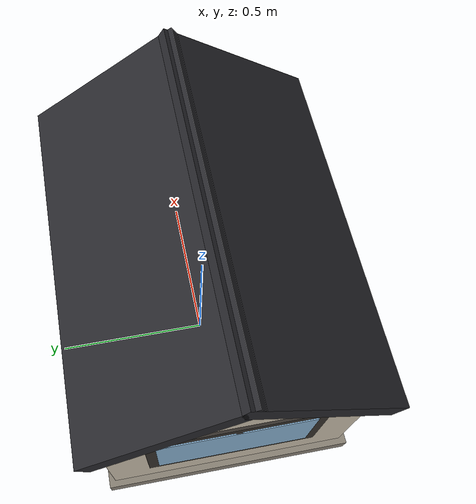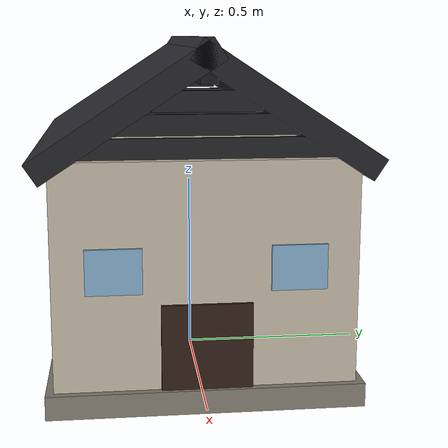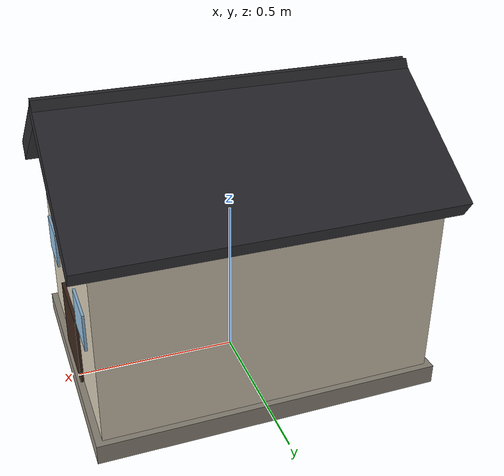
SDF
<sdf version="1.9">
  <model name="house">
    <static>true</static>
    <link name="house_link">
      <collision name="walls_collision">
        <pose>0 0 0.3125 0 0 0</pose>
        <geometry>
          <box>
            <size>1.0 0.75 0.625</size>
          </box>
        </geometry>
      </collision>

      <visual name="walls_visual">
        <pose>0 0 0.3125 0 0 0</pose>
        <geometry>
          <box>
            <size>1.0 0.75 0.625</size>
          </box>
        </geometry>
        <material>
          <ambient>0.82 0.78 0.70 1</ambient>
          <diffuse>0.82 0.78 0.70 1</diffuse>
          <specular>0.05 0.05 0.05 1</specular>
        </material>
      </visual>

      <visual name="roof_left_visual">
        <pose>0 0.19 0.745 -0.58 0 0</pose>
        <geometry>
          <box>
            <size>1.10 0.52 0.06</size>
          </box>
        </geometry>
        <material>
          <ambient>0.16 0.16 0.18 1</ambient>
          <diffuse>0.16 0.16 0.18 1</diffuse>
          <specular>0.05 0.05 0.05 1</specular>
        </material>
      </visual>

      <visual name="roof_right_visual">
        <pose>0 -0.19 0.745 0.58 0 0</pose>
        <geometry>
          <box>
            <size>1.10 0.52 0.06</size>
          </box>
        </geometry>
        <material>
          <ambient>0.16 0.16 0.18 1</ambient>
          <diffuse>0.16 0.16 0.18 1</diffuse>
          <specular>0.05 0.05 0.05 1</specular>
        </material>
      </visual>

      <visual name="roof_ridge_visual">
        <pose>0 0 0.825 0 0 0</pose>
        <geometry>
          <box>
            <size>1.08 0.04 0.04</size>
          </box>
        </geometry>
        <material>
          <ambient>0.12 0.12 0.14 1</ambient>
          <diffuse>0.12 0.12 0.14 1</diffuse>
          <specular>0.04 0.04 0.04 1</specular>
        </material>
      </visual>

      <visual name="front_gable_band_1_visual">
        <pose>0.5005 0 0.655 0 0 0</pose>
        <geometry>
          <box>
            <size>0.011 0.62 0.05</size>
          </box>
        </geometry>
        <material>
          <ambient>0.16 0.16 0.18 1</ambient>
          <diffuse>0.16 0.16 0.18 1</diffuse>
          <specular>0.05 0.05 0.05 1</specular>
        </material>
      </visual>

      <visual name="front_gable_band_2_visual">
        <pose>0.5005 0 0.710 0 0 0</pose>
        <geometry>
          <box>
            <size>0.011 0.44 0.05</size>
          </box>
        </geometry>
        <material>
          <ambient>0.16 0.16 0.18 1</ambient>
          <diffuse>0.16 0.16 0.18 1</diffuse>
          <specular>0.05 0.05 0.05 1</specular>
        </material>
      </visual>

      <visual name="front_gable_band_3_visual">
        <pose>0.5005 0 0.765 0 0 0</pose>
        <geometry>
          <box>
            <size>0.011 0.26 0.05</size>
          </box>
        </geometry>
        <material>
          <ambient>0.16 0.16 0.18 1</ambient>
          <diffuse>0.16 0.16 0.18 1</diffuse>
          <specular>0.05 0.05 0.05 1</specular>
        </material>
      </visual>

      <visual name="rear_gable_band_1_visual">
        <pose>-0.5005 0 0.655 0 0 0</pose>
        <geometry>
          <box>
            <size>0.011 0.62 0.05</size>
          </box>
        </geometry>
        <material>
          <ambient>0.16 0.16 0.18 1</ambient>
          <diffuse>0.16 0.16 0.18 1</diffuse>
          <specular>0.05 0.05 0.05 1</specular>
        </material>
      </visual>

      <visual name="rear_gable_band_2_visual">
        <pose>-0.5005 0 0.710 0 0 0</pose>
        <geometry>
          <box>
            <size>0.011 0.44 0.05</size>
          </box>
        </geometry>
        <material>
          <ambient>0.16 0.16 0.18 1</ambient>
          <diffuse>0.16 0.16 0.18 1</diffuse>
          <specular>0.05 0.05 0.05 1</specular>
        </material>
      </visual>

      <visual name="rear_gable_band_3_visual">
        <pose>-0.5005 0 0.765 0 0 0</pose>
        <geometry>
          <box>
            <size>0.011 0.26 0.05</size>
          </box>
        </geometry>
        <material>
          <ambient>0.16 0.16 0.18 1</ambient>
          <diffuse>0.16 0.16 0.18 1</diffuse>
          <specular>0.05 0.05 0.05 1</specular>
        </material>
      </visual>

      <visual name="door_visual">
        <pose>0.505 0 0.1375 0 0 0</pose>
        <geometry>
          <box>
            <size>0.01 0.225 0.275</size>
          </box>
        </geometry>
        <material>
          <ambient>0.22 0.14 0.10 1</ambient>
          <diffuse>0.22 0.14 0.10 1</diffuse>
          <specular>0.02 0.02 0.02 1</specular>
        </material>
      </visual>

      <visual name="window_left_visual">
        <pose>0.5075 -0.225 0.3625 0 0 0</pose>
        <geometry>
          <box>
            <size>0.0075 0.1375 0.1125</size>
          </box>
        </geometry>
        <material>
          <ambient>0.55 0.72 0.85 1</ambient>
          <diffuse>0.55 0.72 0.85 1</diffuse>
          <specular>0.1 0.1 0.1 1</specular>
        </material>
      </visual>

      <visual name="window_right_visual">
        <pose>0.5075 0.225 0.3625 0 0 0</pose>
        <geometry>
          <box>
            <size>0.0075 0.1375 0.1125</size>
          </box>
        </geometry>
        <material>
          <ambient>0.55 0.72 0.85 1</ambient>
          <diffuse>0.55 0.72 0.85 1</diffuse>
          <specular>0.1 0.1 0.1 1</specular>
        </material>
      </visual>

      <visual name="rear_big_window_frame_visual">
        <pose>-0.503 0 0.3725 0 0 0</pose>
        <geometry>
          <box>
            <size>0.01 0.51 0.31</size>
          </box>
        </geometry>
        <material>
          <ambient>0.22 0.2 0.18 1</ambient>
          <diffuse>0.22 0.2 0.18 1</diffuse>
          <specular>0.03 0.03 0.03 1</specular>
        </material>
      </visual>

      <visual name="rear_big_window_visual">
        <pose>-0.5075 0 0.3725 0 0 0</pose>
        <geometry>
          <box>
            <size>0.0075 0.45 0.25</size>
          </box>
        </geometry>
        <material>
          <ambient>0.55 0.72 0.85 1</ambient>
          <diffuse>0.55 0.72 0.85 1</diffuse>
          <specular>0.12 0.12 0.12 1</specular>
        </material>
      </visual>

      <visual name="rear_big_window_mullion_visual">
        <pose>-0.507 0 0.3725 0 0 0</pose>
        <geometry>
          <box>
            <size>0.008 0.025 0.25</size>
          </box>
        </geometry>
        <material>
          <ambient>0.22 0.2 0.18 1</ambient>
          <diffuse>0.22 0.2 0.18 1</diffuse>
          <specular>0.03 0.03 0.03 1</specular>
        </material>
      </visual>

      <visual name="base_trim_visual">
        <pose>0 0 0.03 0 0 0</pose>
        <geometry>
          <box>
            <size>1.04 0.79 0.06</size>
          </box>
        </geometry>
        <material>
          <ambient>0.56 0.53 0.48 1</ambient>
          <diffuse>0.56 0.53 0.48 1</diffuse>
          <specular>0.02 0.02 0.02 1</specular>
        </material>
      </visual>
    </link>
  </model>
</sdf>
